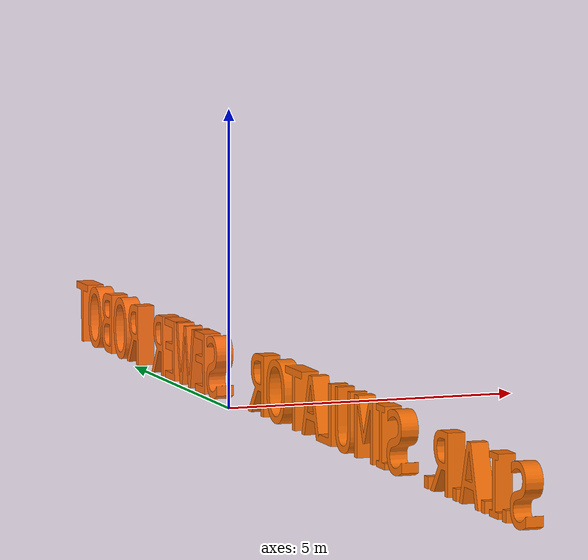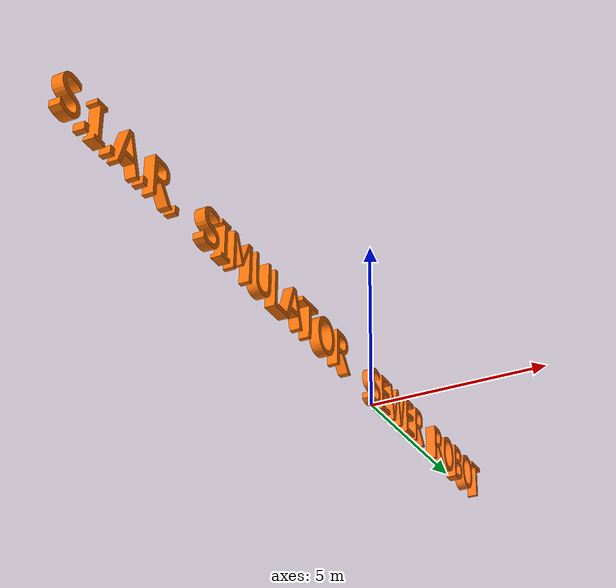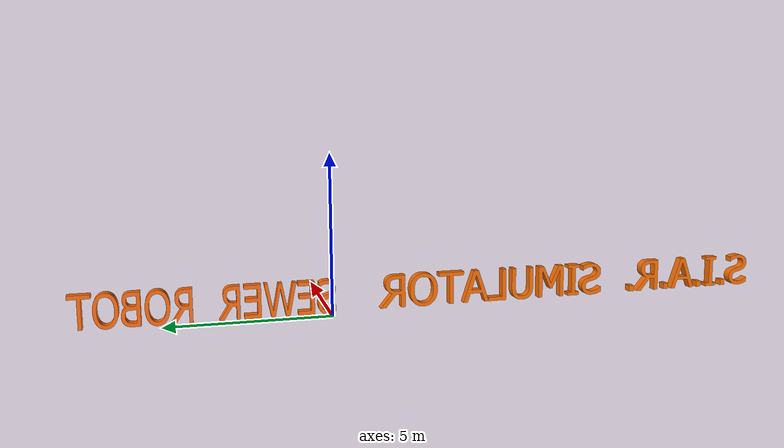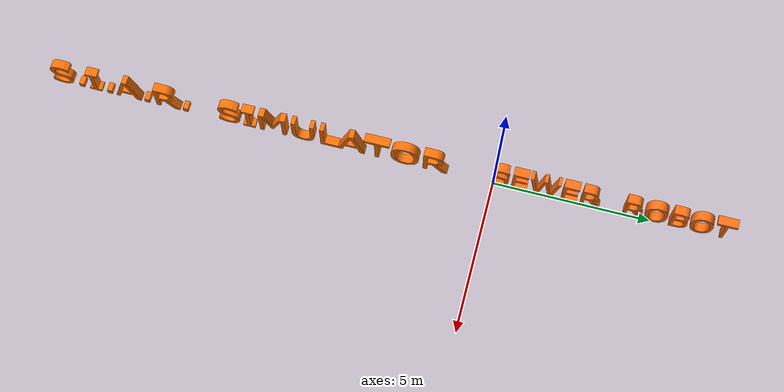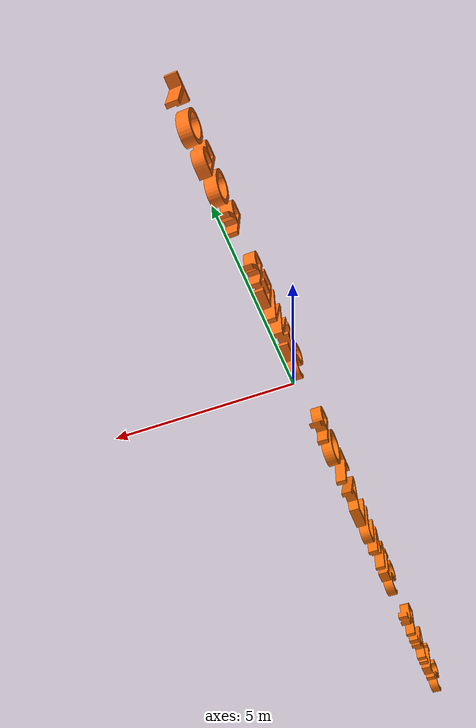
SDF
<?xml version="1.0" ?>
<sdf version="1.5">
  <model name="siar Words">
    <static>true</static>

   <link name="link_1">
      <pose> 0 -14.5 0.1 0 0 1.5707 </pose>
      <collision name="collision">
        <geometry>
          <mesh>
            <uri>model://meshes/siar_simulator.dae</uri>
          </mesh>
        </geometry>
      </collision>
      <visual name="visual">
        <geometry>
          <mesh>
            <uri>model://meshes/siar_simulator.dae</uri>
          </mesh>
        </geometry>
      </visual>
    </link>
   <link name="link_2">
      <pose> 0 0 0.2 0 0 1.5707 </pose>
      <collision name="collision">
        <geometry>
          <mesh>
            <uri>model://meshes/sewer_robot.dae</uri>
          </mesh>
        </geometry>
      </collision>
      <visual name="visual">
        <geometry>
          <mesh>
            <uri>model://meshes/sewer_robot.dae</uri>
          </mesh>
        </geometry>
      </visual>
    </link>

  </model>
</sdf>
